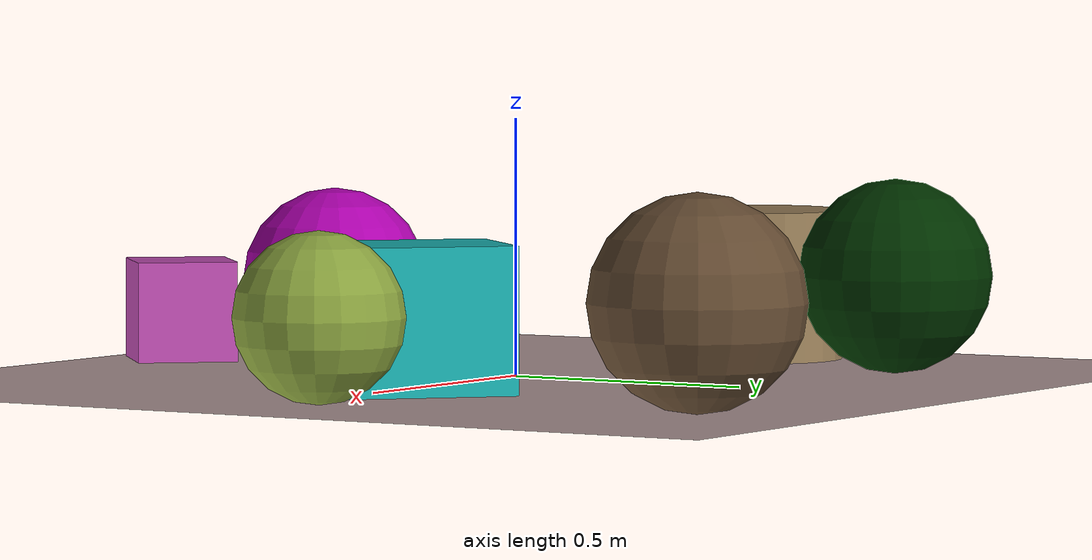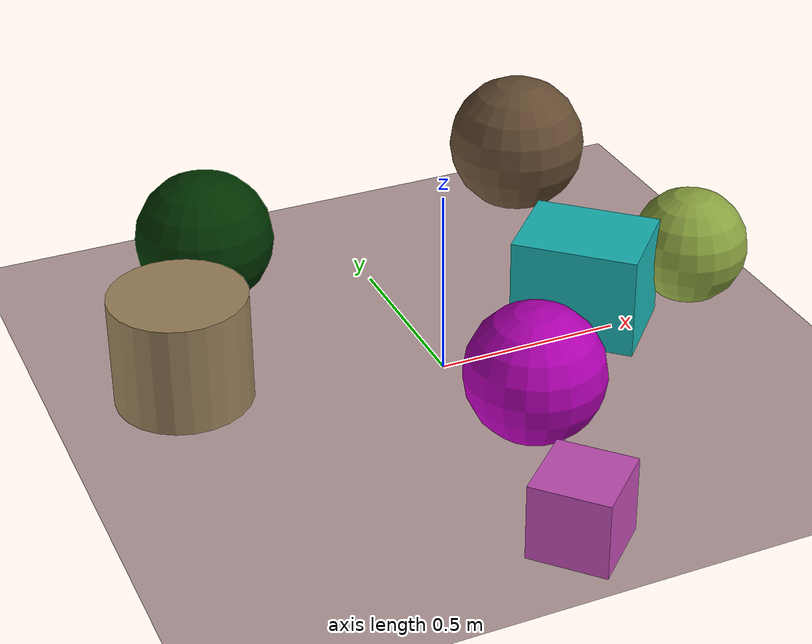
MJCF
<mujoco>
   <asset>
<texture type="skybox" builtin="gradient" rgb1="0.8 0.2 0.3" rgb2="0.1 0.1 0.1" width="256" height="256"/>
<texture name="gradient_0" builtin="gradient" rgb1="0.9 0.5 0.9" rgb2="0.6 0.1 0.5" width="200" height="200"/>
<texture name="flat_1" builtin="flat" rgb1="0.7 0.0 0.7" rgb2="0.7 0.0 0.7"  width="200" height="200"/>
<texture name="checker_2" builtin="checker" rgb1="0.5 0.4 0.5" rgb2="0.6 0.9 0.0" width="200" height="200"/>
<texture name="flat_3" builtin="flat" rgb1="0.1 0.7 0.7" rgb2="0.1 0.7 0.7"  width="200" height="200"/>
<texture name="flat_4" builtin="flat" rgb1="0.4 0.3 0.2" rgb2="0.4 0.3 0.2"  width="200" height="200"/>
<texture name="flat_5" builtin="flat" rgb1="0.0 0.2 0.0" rgb2="0.0 0.2 0.0"  width="200" height="200"/>
<texture name="gradient_6" builtin="gradient" rgb1="0.3 0.7 0.6" rgb2="0.9 0.3 0.1" width="200" height="200"/><material name="gradient_0_mat" reflectance="0" texture="gradient_0" texuniform="true"/>
<material name="flat_1_mat" reflectance="0" texture="flat_1" texuniform="true"/>
<material name="checker_2_mat" reflectance="0" texrepeat="10 10" texture="checker_2" texuniform="false" />
<material name="flat_3_mat" reflectance="0" texture="flat_3" texuniform="true"/>
<material name="flat_4_mat" reflectance="0" texture="flat_4" texuniform="true"/>
<material name="flat_5_mat" reflectance="0" texture="flat_5" texuniform="true"/>
<material name="gradient_6_mat" reflectance="0" texture="gradient_6" texuniform="true"/>
   </asset>

   <worldbody>
      <light diffuse=".9 .9 .9" pos="0 0 3" dir="0 0 -1"/>
     <geom type="plane" size="1 1 0.1" rgba="0.7 0.6 0.6 1"/>
<geom type="box" pos="-0.02 -0.81 0.1" size="0.1 0.1 0.1" material="gradient_0_mat" euler="0 0 43" />
<geom type="sphere" pos="0.08 -0.37 0.18" size="0.18 0.18 0.18" material="flat_1_mat" euler="0 0 20" />
<geom type="sphere" pos="0.77 0.06 0.16" size="0.16 0.16 0.16" material="checker_2_mat" euler="0 0 85" />
<geom type="box" pos="0.44 0.05 0.14" size="0.13 0.17 0.14" material="flat_3_mat" euler="0 0 47" />
<geom type="sphere" pos="0.58 0.75 0.2" size="0.2 0.2 0.2" material="flat_4_mat" euler="0 0 13" />
<geom type="sphere" pos="-0.45 0.59 0.19" size="0.19 0.19 0.19" material="flat_5_mat" euler="0 0 14" />
<geom type="cylinder" pos="-0.66 0.15 0.15" size="0.18 0.15 0.15" material="gradient_6_mat" euler="0 0 50" /><camera euler="60 0 180" fovy="60" name="camera1" pos="-0.2 -1.5 1"></camera>   </worldbody>
</mujoco>
